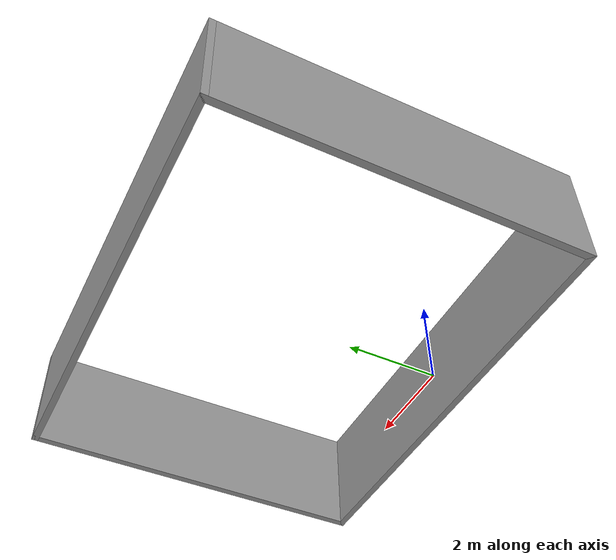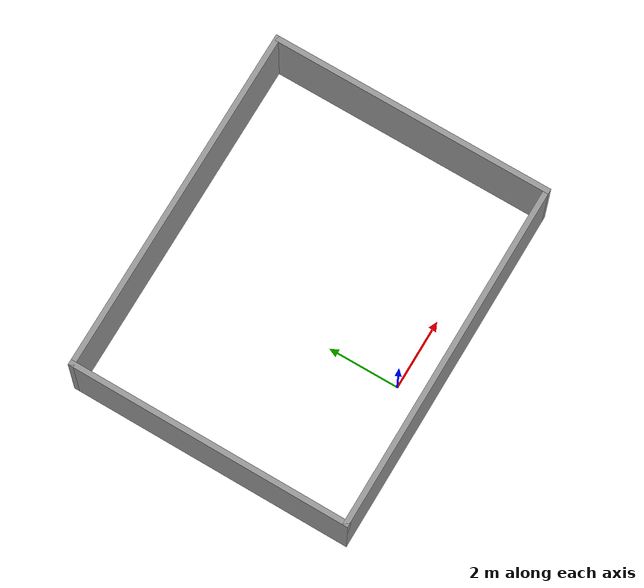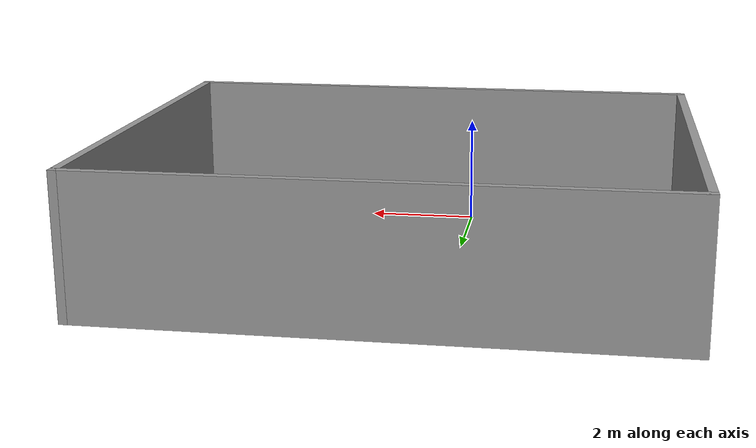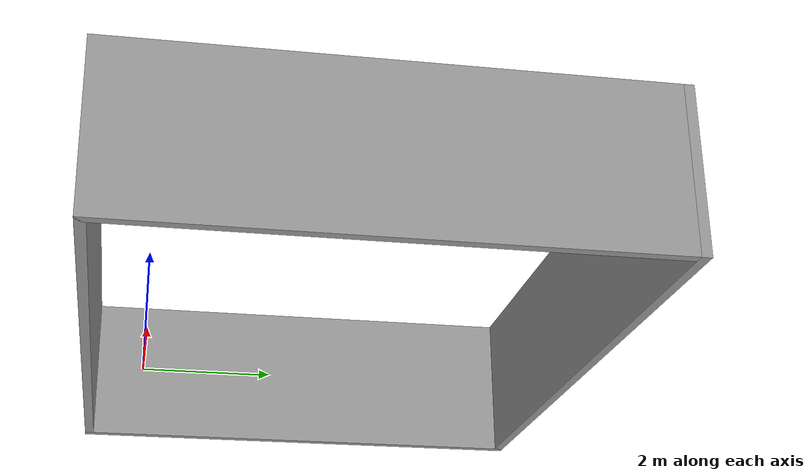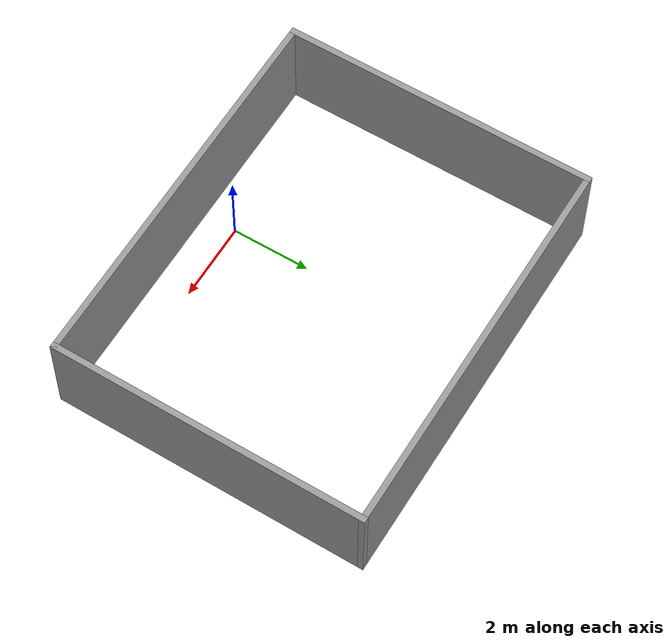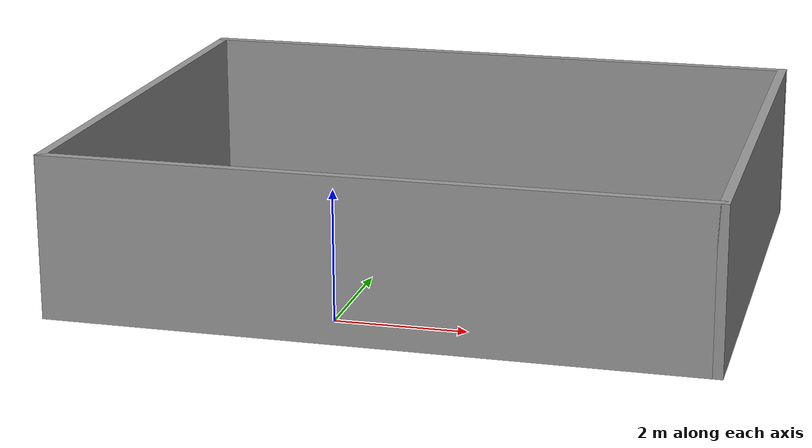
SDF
<?xml version='1.0'?>
<sdf version='1.6'>
  <model name='world1'>
    <pose frame=''>0.815 3.025 0 0 -0 0</pose>
    <link name='Wall_0'>
      <collision name='Wall_0_Collision'>
        <geometry>
          <box>
            <size>10 0.15 2.5</size>
          </box>
        </geometry>
        <pose frame=''>0 0 1.25 0 -0 0</pose>
      </collision>
      <visual name='Wall_0_Visual'>
        <pose frame=''>0 0 1.25 0 -0 0</pose>
        <geometry>
          <box>
            <size>10 0.15 2.5</size>
          </box>
        </geometry>
        <material>
          <script>
            <uri>file://media/materials/scripts/gazebo.material</uri>
            <name>Gazebo/Grey</name>
          </script>
          <ambient>1 1 1 1</ambient>
        </material>
        <meta>
          <layer>0</layer>
        </meta>
      </visual>
      <pose frame=''>0 -3.925 0 0 -0 0</pose>
    </link>
    <link name='Wall_4'>
      <collision name='Wall_4_Collision'>
        <geometry>
          <box>
            <size>8 0.15 2.5</size>
          </box>
        </geometry>
        <pose frame=''>0 0 1.25 0 -0 0</pose>
      </collision>
      <visual name='Wall_4_Visual'>
        <pose frame=''>0 0 1.25 0 -0 0</pose>
        <geometry>
          <box>
            <size>8 0.15 2.5</size>
          </box>
        </geometry>
        <material>
          <script>
            <uri>file://media/materials/scripts/gazebo.material</uri>
            <name>Gazebo/Grey</name>
          </script>
          <ambient>1 1 1 1</ambient>
        </material>
        <meta>
          <layer>0</layer>
        </meta>
      </visual>
      <pose frame=''>4.925 0 0 0 -0 1.5708</pose>
    </link>
    <link name='Wall_5'>
      <collision name='Wall_5_Collision'>
        <geometry>
          <box>
            <size>10 0.15 2.5</size>
          </box>
        </geometry>
        <pose frame=''>0 0 1.25 0 -0 0</pose>
      </collision>
      <visual name='Wall_5_Visual'>
        <pose frame=''>0 0 1.25 0 -0 0</pose>
        <geometry>
          <box>
            <size>10 0.15 2.5</size>
          </box>
        </geometry>
        <material>
          <script>
            <uri>file://media/materials/scripts/gazebo.material</uri>
            <name>Gazebo/Grey</name>
          </script>
          <ambient>1 1 1 1</ambient>
        </material>
        <meta>
          <layer>0</layer>
        </meta>
      </visual>
      <pose frame=''>0 3.925 0 0 -0 3.14159</pose>
    </link>
    <link name='Wall_6'>
      <collision name='Wall_6_Collision'>
        <geometry>
          <box>
            <size>8 0.15 2.5</size>
          </box>
        </geometry>
        <pose frame=''>0 0 1.25 0 -0 0</pose>
      </collision>
      <visual name='Wall_6_Visual'>
        <pose frame=''>0 0 1.25 0 -0 0</pose>
        <geometry>
          <box>
            <size>8 0.15 2.5</size>
          </box>
        </geometry>
        <material>
          <script>
            <uri>file://media/materials/scripts/gazebo.material</uri>
            <name>Gazebo/Grey</name>
          </script>
          <ambient>1 1 1 1</ambient>
        </material>
        <meta>
          <layer>0</layer>
        </meta>
      </visual>
      <pose frame=''>-4.925 0 0 0 -0 -1.5708</pose>
    </link>
    <static>1</static>
  </model>
</sdf>
